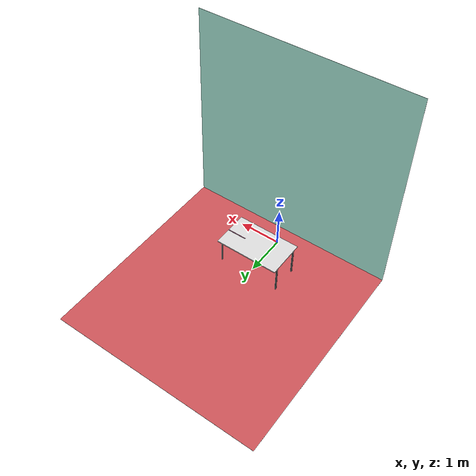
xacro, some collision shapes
<?xml version="1.0"?>
<robot xmlns:xacro="http://ros.org/wiki/xacro" name="apclab_world">

	<xacro:property name="camera_pose_z" value="1.7" />
	<xacro:property name="camera_pose_y" value="1.6" />
	<xacro:property name="camera_pitch" value="${pi/4}" />

	<xacro:property name="pi" value="3.1415926535897931"/>

	<!-- Load Camera Config File -->
	<xacro:include filename="$(find apclab_gazebo)/urdf/camera.gazebo.xacro" />
	<!-- Setup armbot transmission -->

	<!-- THE ROBOT -->
	<link name="world" />

	<!-- Load operation_table -->
	<xacro:include filename="$(find apclab_gazebo)/urdf/operation_table.urdf.xacro" />
	<xacro:operation_table />

	<joint name="world_to_table_joint" type="fixed">
		<parent link="world" />
		<child link = "table_surface_link" />
		<origin xyz="0.0 0.85 0.7125" rpy="0.0 0.0 0.0" />
	</joint>

	<!-- ##################################
		 			Camera Setup
	################################## -->
		<joint name="camera_joint" type="fixed">
			<axis xyz="1 0 0" />
			<origin xyz="0 ${camera_pose_y} ${camera_pose_z}" rpy="0 ${camera_pitch} -${pi/2}"/>
			<parent link="world"/>
			<child link="camera_link"/>
		</joint>

	<!-- Camera -->
		<link name="camera_link">
			<collision>
				<origin xyz="-0.05 0 0" rpy="-${pi/2} ${pi} -${pi/2}"/>
				<geometry>
					<box size="0.4 0.01 0.04"/>
				</geometry>
			</collision>

			<visual>
				<origin xyz="-0.05 0 0" rpy="-${pi/2} ${pi} -${pi/2}"/>
				<geometry>
					<mesh filename="package://apclab_gazebo/meshes/r200.dae"/>
				</geometry>
			</visual>

			<inertial>
				<mass value="1e-5" />
				<origin xyz="0 0 0" rpy="0 0 0"/>
				<inertia ixx="1e-6" ixy="0" ixz="0" iyy="1e-6" iyz="0" izz="1e-6" />
			</inertial>
		</link>

	<!-- ###############################
						Room Setup
	############################### -->
	<!-- Lab Walls -->
	<joint name="wall_joint" type="fixed">
		<axis xyz="1 0 0" />
		<origin xyz="0 -0.45 2.5" rpy="0 0 0"/>
		<parent link="world"/>
		<child link="wall_link"/>
	</joint>

	<gazebo reference="wall_link">
		<material>Gazebo/Residential</material>
	</gazebo>

	<link name="wall_link">
		<collision>
			<origin xyz="0 0 0" rpy="0 0 0"/>
			<geometry>
				<box size="5 0.001 5"/>
			</geometry>
		</collision>

		<visual>
			<origin xyz="0 0 0" rpy="0 0 0"/>
			<geometry>
				<box size="5 0.001 5"/>
			</geometry>
			<material name="lab_wall">
				<color rgba="${143/255} ${199/255} ${184/255} 1" />
			</material>
		</visual>

		<inertial>
			<mass value="1e-5" />
			<origin xyz="0 0 0" rpy="0 0 0"/>
			<inertia ixx="1e-6" ixy="0" ixz="0" iyy="1e-6" iyz="0" izz="1e-6" />
		</inertial>
	</link>

	<!-- Lab Floor-->
	<joint name="floor_joint" type="fixed">
		<axis xyz="1 0 0" />
		<origin xyz="0 2.05 0.0005" rpy="0 0 0"/>
		<parent link="world"/>
		<child link="floor_link"/>
	</joint>

	<gazebo reference="floor_link">
		<material>Gazebo/Residential</material>
	</gazebo>

	<link name="floor_link">
		<collision>
			<origin xyz="0 0 0" rpy="0 0 0"/>
			<geometry>
				<box size="5 5 0.001"/>
			</geometry>
		</collision>

		<visual>
			<origin xyz="0 0 0" rpy="0 0 0"/>
			<geometry>
				<box size="5 5 0.001"/>
			</geometry>
			<material name="grey_floor">
				<color rgba="${214/255} ${88/255} ${93/255} 1" />
			</material>
		</visual>

		<inertial>
			<mass value="1e-5" />
			<origin xyz="0 0 0" rpy="0 0 0"/>
			<inertia ixx="1e-6" ixy="0" ixz="0" iyy="1e-6" iyz="0" izz="1e-6" />
		</inertial>
	</link>

</robot>

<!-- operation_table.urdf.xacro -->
<robot xmlns:xacro="http://ros.org/wiki/xacro">
  <xacro:include filename="$(find apclab_description)/urdf/table_colour.gazebo.xacro" />
  <xacro:property name="pi" value="3.1415926535897931"/>
  <xacro:property name="leg_mass" value="0.5" />
  <xacro:property name="table_surface_mass" value="5" />
  <xacro:property name="table_surface_length" value="1.5" />
  <xacro:property name="table_surface_width" value="0.9" />
  <xacro:property name="table_surface_height" value="0.025" />
  <xacro:property name="leg_length" value="0.03" />
  <xacro:property name="leg_height" value="0.7" />

  <xacro:macro  name="table_surface" >
    <link name="table_surface_link">
      <collision>
        <origin xyz="0 0 0" rpy="0 0 0"/>
        <geometry>
          <box size="${table_surface_length} ${table_surface_width} ${table_surface_height}"/>
        </geometry>
      </collision>
      <visual>
        <origin xyz="0 0 0" rpy="0 0 0"/>
        <geometry>
          <box size="${table_surface_length} ${table_surface_width} ${table_surface_height}"/>
        </geometry>
        <material name="">
          <color rgba="0.9 0.9 0.9 1" />
        </material>
      </visual>
      <inertial>
        <origin xyz="0 0 0" rpy="0 0 0"/>
        <mass value="${table_surface_mass}"/>
        <inertia
          ixx="1.0" ixy="0.0" ixz="0.0"
          iyy="1.0" iyz="0.0"
          izz="1.0"/>
      </inertial>
    </link>
  </xacro:macro>
<!-- leg_x leg_y the quadrain of table legs in robot frame -->
  <xacro:macro  name="leg" params="leg_idx">
      <link name="leg_${leg_idx}">
        <collision>
          <origin xyz="0 0 0" rpy="0 0 0"/>
          <geometry>
            <box size="${leg_length} ${leg_length} ${leg_height}"/>
          </geometry>
        </collision>

        <visual>
          <geometry>
            <box size="${leg_length} ${leg_length} ${leg_height}"/>
          </geometry>
          <material name="">
            <color rgba="0.1 0.1 0.1 1" />
          </material>
        </visual>

        <inertial>
          <origin xyz="0 0 0" rpy="0 0 0"/>
          <mass value="${leg_mass}"/>
          <inertia
            ixx="1.0" ixy="0.0" ixz="0.0"
            iyy="1.0" iyz="0.0"
            izz="1.0"/>
        </inertial>
      </link>
  </xacro:macro>

  <xacro:macro name="leg_joint" params="leg_idx leg_x leg_y">
    <joint name="table_leg_joint_${leg_idx}" type="fixed">
      <origin xyz="${leg_x*0.725} ${leg_y*0.315} -0.3625"/>
      <parent link="table_surface_link"/>
      <child link="leg_${leg_idx}"/>
    </joint>
  </xacro:macro>

  <xacro:macro name="leg_group">
    <xacro:leg leg_idx="1" />
    <xacro:leg leg_idx="2" />
    <xacro:leg leg_idx="3" />
    <xacro:leg leg_idx="4" />
  </xacro:macro>

  <xacro:macro name="leg_joint_group">
    <xacro:leg_joint leg_idx="1" leg_x="-1" leg_y="-1" />
    <xacro:leg_joint leg_idx="2" leg_x="1" leg_y="-1" />
    <xacro:leg_joint leg_idx="3" leg_x="1" leg_y="1" />
    <xacro:leg_joint leg_idx="4" leg_x="-1" leg_y="1" />
  </xacro:macro>

  <xacro:macro name="paint_table">
    <xacro:leg_colour leg_idx="1" />
    <xacro:leg_colour leg_idx="2" />
    <xacro:leg_colour leg_idx="3" />
    <xacro:leg_colour leg_idx="4" />
    <xacro:table_surface_colour />
  </xacro:macro>

  <xacro:macro name="operation_table">
    <xacro:table_surface />
    <xacro:leg_group />
    <xacro:leg_joint_group />
    <xacro:paint_table />
  </xacro:macro>

</robot>
